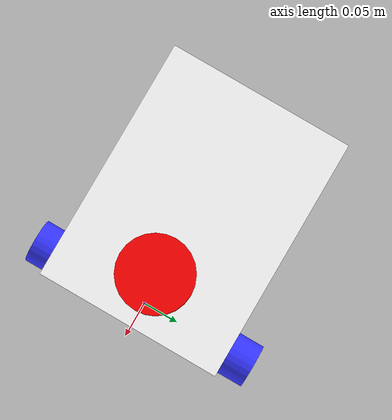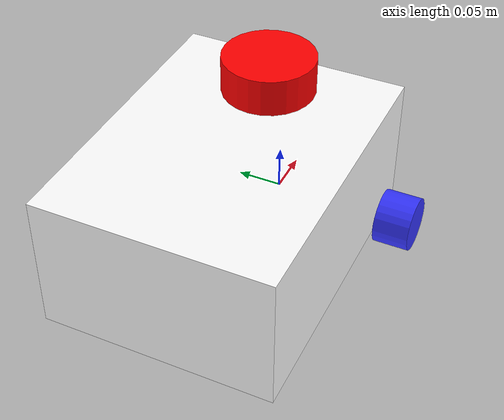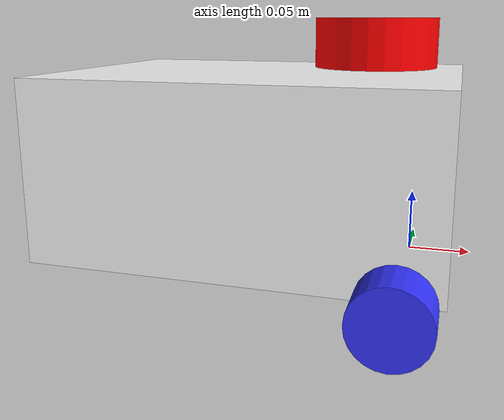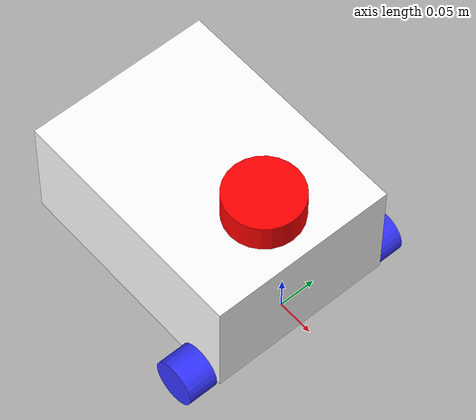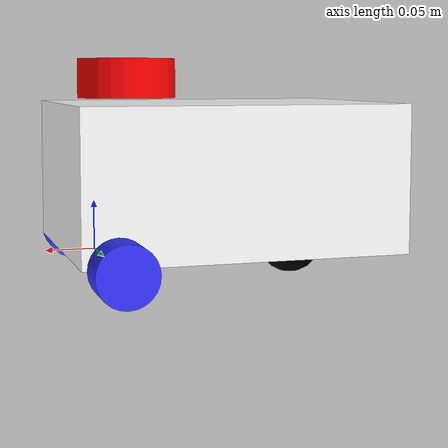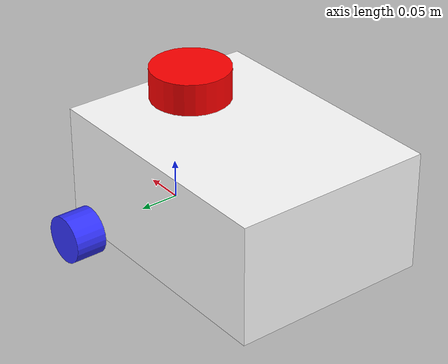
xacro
<?xml version="1.0"?>
<robot xmlns:xacro="http://www.ros.org/wiki/xacro"  name="robot">
    <xacro:arg name="use_ros2_control" default="true"/>
	<xacro:arg name="sim_mode" default="false"/>

    <xacro:include filename="robot_core.xacro" />
    <xacro:include filename="lidar.xacro" />
    <xacro:if value="$(arg use_ros2_control)">
        <xacro:include filename="ros2_control.xacro"/>
    </xacro:if>

    <xacro:unless value="$(arg use_ros2_control)">
        <xacro:include filename="gazebo_control.xacro" />
    </xacro:unless>
</robot>

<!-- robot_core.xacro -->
<robot xmlns:xacro="http://www.ros.org/wiki/xacro" >

	<xacro:include filename="inertial_macros.xacro"/>

    <material name="white">
        <color rgba="1 1 1 1" />
    </material>

    <material name="orange">
        <color rgba="1 0.3 0.1 1"/>
    </material>

    <material name="blue">
        <color rgba="0.2 0.2 1 1"/>
    </material>

    <material name="black">
        <color rgba="0 0 0 1"/>
    </material>

    <material name="red">
        <color rgba="1 0 0 1"/>
    </material>
   <!-- BASE LINK -->

    <link name="base_link">

    </link>

    <!-- BASE_FOOTPRINT LINK -->

    <joint name="base_footprint_joint" type="fixed">
        <parent link="base_link"/>
        <child link="base_footprint"/>
        <origin xyz="0 0 0" rpy="0 0 0"/>
    </joint>

    <link name="base_footprint">
    </link>

    <!-- Chassis Link -->

    <joint name="chassis_joint" type="fixed">
        <parent link="base_link"/>
        <child link="chassis"/>
        <origin xyz="0.035 0 0"/>
    </joint>

    <link name="chassis">
        <visual>
        	<origin xyz="-0.165 0 0.075"/>
            <geometry>
                <box size="0.33 0.25 0.15"/>
            </geometry>
            <material name="white"/>
        </visual>
        <collision>
            <origin xyz="-0.165 0 0.075"/>
            <geometry>
                <box size="0.33 0.25 0.15"/>
            </geometry>
        </collision>
        <xacro:inertial_box mass="3" x="0.33" y="0.24" z="0.15">
            <origin xyz="-0.165 0 0.075" rpy="0 0 0"/>
        </xacro:inertial_box>
    </link>

    <gazebo reference="chassis">
        <material>Gazebo/White</material>
    </gazebo>

    <!-- LEFT WHEEL LINK -->

    <joint name="left_wheel_joint" type="continuous">
        <parent link="base_link"/>
        <child link="left_wheel"/>
        <origin xyz="0 0.145 0" rpy="-${pi/2} 0 0" />
        <axis xyz="0 0 1"/>
    </joint>
     <!-- length here is the thickness of the wheel -->
    <link name="left_wheel">
        <visual>
            <geometry>
                <cylinder radius="0.03" length="0.04"/>
            </geometry>
            <material name="blue"/>
        </visual>
        <collision>
            <geometry>
                <sphere radius="0.03"/>
            </geometry>
        </collision>
        <xacro:inertial_cylinder mass="0.1" length="0.04" radius="0.03">
            <origin xyz="0 0 0" rpy="0 0 0"/>
        </xacro:inertial_cylinder>
    </link>

    <gazebo reference="left_wheel">
        <material>Gazebo/Blue</material>
    </gazebo>

    <!-- RIGHT WHEEL LINK -->

    <joint name="right_wheel_joint" type="continuous">
        <parent link="base_link"/>
        <child link="right_wheel"/>
        <origin xyz="0 -0.145 0" rpy="${pi/2} 0 0" />
        <axis xyz="0 0 -1"/>
    </joint>

    <link name="right_wheel">
        <visual>
            <geometry>
                <cylinder radius="0.03" length="0.04"/>
            </geometry>
            <material name="blue"/>
        </visual>
        <collision>
            <geometry>
                <sphere radius="0.03"/>
            </geometry>
        </collision>
        <xacro:inertial_cylinder mass="0.1" length="0.04" radius="0.03">
            <origin xyz="0 0 0" rpy="0 0 0"/>
        </xacro:inertial_cylinder>
    </link>

    <gazebo reference="right_wheel">
        <material>Gazebo/Blue</material>
    </gazebo>

	<!-- CASTER WHEEL LINK -->

    <joint name="caster_wheel_joint" type="fixed">
        <parent link="chassis"/>
        <child link="caster_wheel"/>
        <origin xyz="-0.25 0 0"/>
    </joint>

    <link name="caster_wheel">
        <visual>
            <geometry>
                <sphere radius="0.035"/>
            </geometry>
            <material name="black"/>
        </visual>
        <collision>
            <geometry>
                <sphere radius="0.035"/>
            </geometry>
        </collision>
        <xacro:inertial_sphere mass="0.1" radius="0.05">
            <origin xyz="0 0 0" rpy="0 0 0"/>
        </xacro:inertial_sphere>
    </link>

    <gazebo reference="caster_wheel">
        <material>Gazebo/Black</material>
        <mu1 value="0.001"/>
        <mu2 value="0.001"/>
    </gazebo>

</robot>

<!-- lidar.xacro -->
<robot xmlns:xacro="http://www.ros.org/wiki/xacro">

    <joint name="laser_joint" type="fixed">
        <parent link="chassis"/>
        <child link="laser_frame"/>
        <origin xyz="-0.07 0 0.175" rpy="0 0 0"/>
    </joint>

    <link name="laser_frame">
        <visual>
            <geometry>
                <cylinder radius="0.05" length="0.04"/>
            </geometry>
            <material name="red"/>
        </visual>
        <collision>
            <geometry>
                <cylinder radius="0.05" length="0.04"/>
            </geometry>
        </collision>
        <xacro:inertial_cylinder mass="0.1" length="0.04" radius="0.05">
            <origin xyz="0 0 0" rpy="0 0 0"/>
        </xacro:inertial_cylinder>
    </link>

    <gazebo reference="laser_frame">
        <material>Gazebo/Red</material>

        <sensor name="laser" type="ray">
            <pose> 0 0 0 0 0 0 </pose>
            <visualize>true</visualize>
            <update_rate>10</update_rate>
            <ray>
                <scan>
                    <horizontal>
                        <samples>360</samples>
                        <min_angle>-3.14</min_angle>
                        <max_angle>3.14</max_angle>
                    </horizontal>
                </scan>
                <range>
                    <min>0.3</min>
                    <max>12</max>
                </range>
            </ray>
            <plugin name="laser_controller" filename="libgazebo_ros_ray_sensor.so">
                <ros>
                    <argument>~/out:=scan</argument>
                </ros>
                <output_type>sensor_msgs/LaserScan</output_type>
                <frame_name>laser_frame</frame_name>
            </plugin>
        </sensor>
    </gazebo>

</robot>
